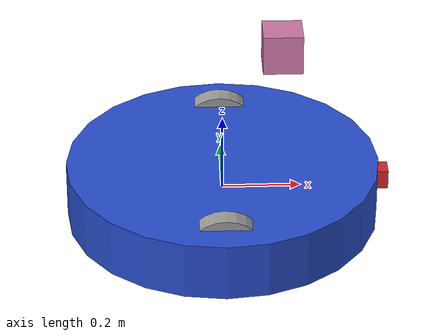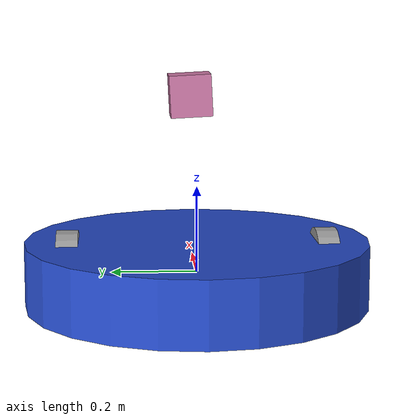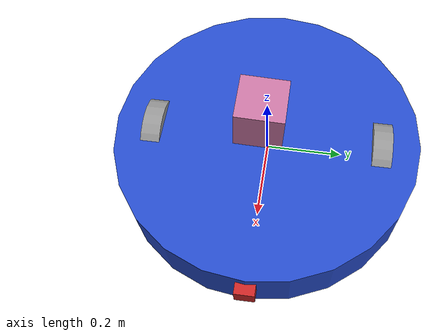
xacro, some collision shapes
<?xml version='1.0'?>

<robot name="my_robot" xmlns:xacro="http://www.ros.org/wiki/xacro">
<xacro:include filename="$(find my_robot)/urdf/my_robot.gazebo" />

  <joint name="robot_footprint_joint" type="fixed">
    <origin xyz="0 0 0" rpy="0 0 0" />
    <parent link="robot_footprint"/>
    <child link="chassis" />
  </joint>

  <link name='chassis'>
    <pose>0 0 0.1 0 0 0</pose>

    <inertial>
      <mass value="15.0"/>
      <origin xyz="0.0 0 0" rpy=" 0 0 0"/>
      <inertia
          ixx="0.1" ixy="0" ixz="0"
          iyy="0.1" iyz="0"
          izz="0.1"
      />
    </inertial>
    <collision name='collision'>
      <origin xyz="0 0 0" rpy=" 0 0 0"/>
      <geometry>
        <cylinder radius="0.4" length="0.15"/>
      </geometry>
    </collision>

    <visual name='chassis_visual'>
      <origin xyz="0 0 0" rpy=" 0 0 0"/>
      <geometry>
        <cylinder radius="0.4" length="0.15"/>
      </geometry>
    </visual>

    <collision name='back_caster_collision'>
      <origin xyz="-0.15 0 -0.05" rpy=" 0 0 0"/>
      <geometry>
        <sphere radius="0.0499"/>
      </geometry>
    </collision>

    <visual name='back_caster_visual'>
      <origin xyz="-0.15 0 -0.05" rpy=" 0 0 0"/>
      <geometry>
        <sphere radius="0.05"/>
      </geometry>
    </visual>

    <collision name='front_caster_collision'>
      <origin xyz="0.15 0 -0.05" rpy=" 0 0 0"/>
      <geometry>
        <sphere radius="0.0499"/>
      </geometry>
    </collision>

    <visual name='front_caster_visual'>
      <origin xyz="0.15 0 -0.05" rpy=" 0 0 0"/>
      <geometry>
        <sphere radius="0.05"/>
      </geometry>
    </visual>

  </link>
  <gazebo reference="chassis">
    <material>Gazebo/Blue</material>
  </gazebo>

 <joint type="continuous" name="left_wheel_hinge">
    <origin xyz="0 0.3 0" rpy="0 0 0"/>
    <child link="left_wheel"/>
    <parent link="chassis"/>
    <axis xyz="0 1 0" rpy="0 0 0"/>
    <limit effort="10000" velocity="1000"/>
    <dynamics damping="1.0" friction="1.0"/>
 </joint>
 <link name='left_wheel'>
    <pose>0 0 0.1 0 0 0</pose>

    <inertial>
      <mass value="5.0"/>
      <origin xyz="0.0 0 0" rpy="0 1.5707 1.5707"/>
      <inertia
          ixx="0.1" ixy="0" ixz="0"
          iyy="0.1" iyz="0"
          izz="0.1"
      />
    </inertial>

    <collision name='collision'>
      <origin xyz="0 0 0" rpy="0 1.5707 1.5707"/>
      <geometry>
          <cylinder radius="0.1" length="0.05"/>
      </geometry>
    </collision>

    <visual name='chassis_visual'>
      <origin xyz="0 0 0" rpy="0 1.5707 1.5707"/>
      <geometry>
        <cylinder radius="0.1" length="0.05"/>
      </geometry>
    </visual>

  </link>
  <gazebo reference="left_wheel">
    <material>Gazebo/Gray</material>
  </gazebo>
    <link name="robot_footprint"></link>

  <joint type="continuous" name="right_wheel_hinge">
    <origin xyz="0 -0.3 0" rpy="0 0 0"/>
    <child link="right_wheel"/>
    <parent link="chassis"/>
    <axis xyz="0 1 0" rpy="0 0 0"/>
    <limit effort="10000" velocity="1000"/>
    <dynamics damping="1.0" friction="1.0"/>
  </joint>

 <link name='right_wheel'>
    <pose>0 0 0.1 0 0 0</pose>

    <inertial>
      <mass value="5.0"/>
      <origin xyz="0.0 0 0" rpy="0 1.5707 1.5707"/>
      <inertia
          ixx="0.1" ixy="0" ixz="0"
          iyy="0.1" iyz="0"
          izz="0.1"
      />
    </inertial>

    <collision name='collision'>
      <origin xyz="0 0 0" rpy="0 1.5707 1.5707"/>
      <geometry>
       <cylinder radius="0.1" length="0.05"/>
      </geometry>
    </collision>

    <visual name='chassis_visual'>
      <origin xyz="0 0 0" rpy="0 1.5707 1.5707"/>
      <geometry>
       <cylinder radius="0.1" length="0.05"/>
      </geometry>
    </visual>

  </link>
  <gazebo reference="right_wheel">
      <material>Gazebo/Gray</material>
  </gazebo>

  <joint type="fixed" name="camera_joint">
    <origin xyz="0.2 0 0" rpy="0 0 0"/>
    <child link="camera"/>
    <parent link="chassis"/>
    <axis xyz="0 1 0" rpy="0 0 0"/>
    <limit effort="10000" velocity="1000"/>
    <dynamics damping="1.0" friction="1.0"/>
  </joint>

 <link name='camera'>
    <pose>0 0 0.1 0 0 0</pose>

    <inertial>
      <mass value="0.1"/>
      <origin xyz="0.2 0 0.025" rpy="0 0 0"/>
      <inertia
          ixx="1e-6" ixy="0" ixz="0"
          iyy="1e-6" iyz="0"
          izz="1e-6"
      />
    </inertial>

    <collision name='camera'>
      <origin xyz="0.2 0 0.025" rpy="0 0 0"/>
      <geometry>
        <box size="0.5 0.5 0.05"/>
      </geometry>
    </collision>

    <visual name='camera'>
      <origin xyz="0.2 0 0.025" rpy="0 0 0"/>
      <geometry>
        <box size="0.05 0.05 0.05"/>
      </geometry>
    </visual>

  </link>
   <link name="camera_link_optical"></link>
  <joint name="camera_optical_joint" type="fixed">
    <origin xyz="0 0 0" rpy="-1.5707 0 -1.5707"/>
    <parent link="chassis"/>
    <child link="camera_link_optical"/>
  </joint>

  <gazebo reference="camera">
    <material>Gazebo/Red</material>
  </gazebo>

  <joint type="fixed" name="hokuyo_joint">
    <origin xyz="0.15 0 0.25" rpy="-0.05 0 0"/>
    <child link="hokuyo"/>
    <parent link="chassis"/>
    <axis xyz="0 1 0" rpy="0 0 0"/>
    <limit effort="10000" velocity="1000"/>
    <dynamics damping="1.0" friction="1.0"/>
  </joint>

 <link name='hokuyo'>
    <pose>0 0 0.15 1 0 0</pose>

    <inertial>
      <mass value="1e-5"/>
      <origin xyz="0 0 0.15" rpy="0 0 0"/>
      <inertia
          ixx="1e-6" ixy="0" ixz="0"
          iyy="1e-6" iyz="0"
          izz="1e-6"
      />
    </inertial>

    <collision name='hokuyo'>
      <origin xyz="0 0 0.15" rpy="0 0 0"/>
      <geometry>
        <box size="0.1 0.1 0.1"/>
      </geometry>
    </collision>

    <visual name='hokuyo'>
      <origin xyz="0 0 0.15" rpy="0 0 0"/>
      <geometry>
        <mesh filename="package://my_robot/meshes/hokuyo.dae"/>
      </geometry>
    </visual>

  </link>

</robot>
